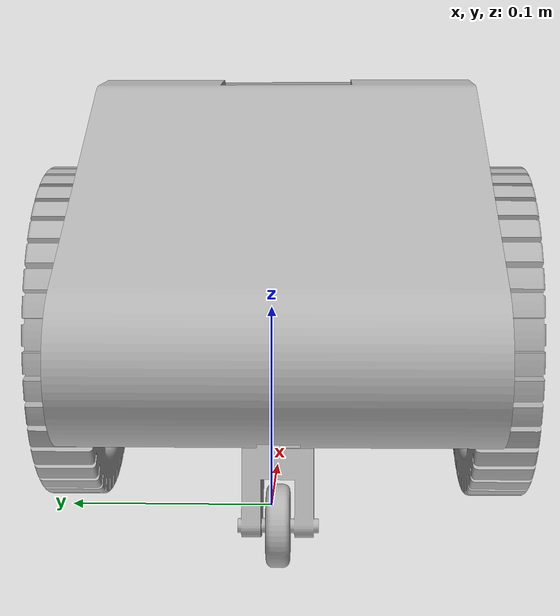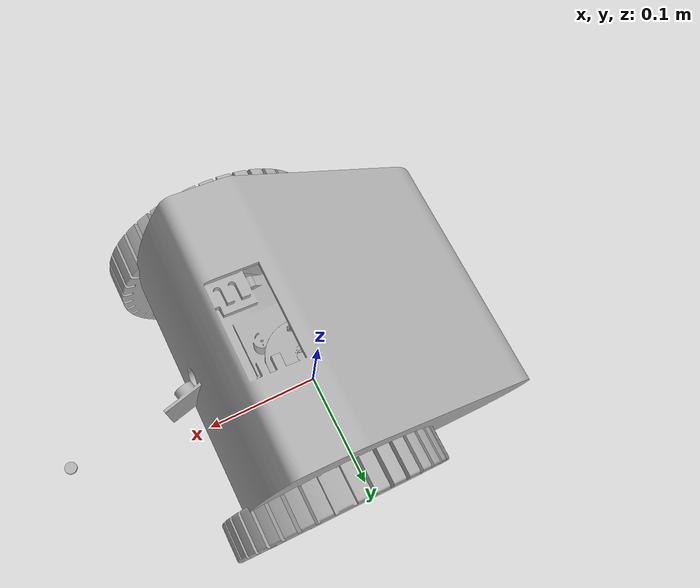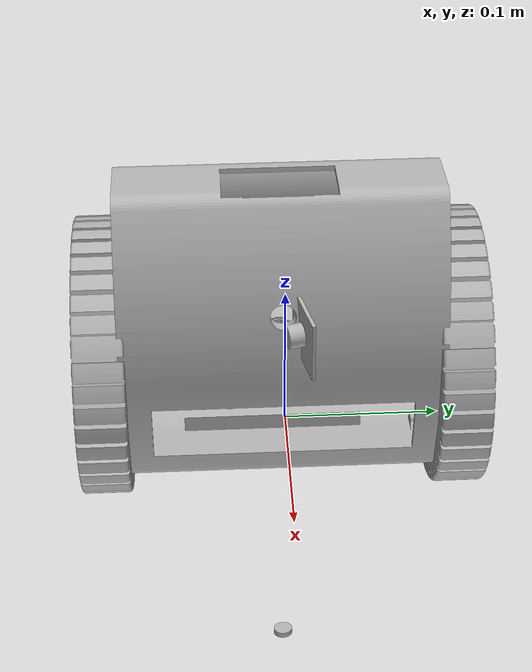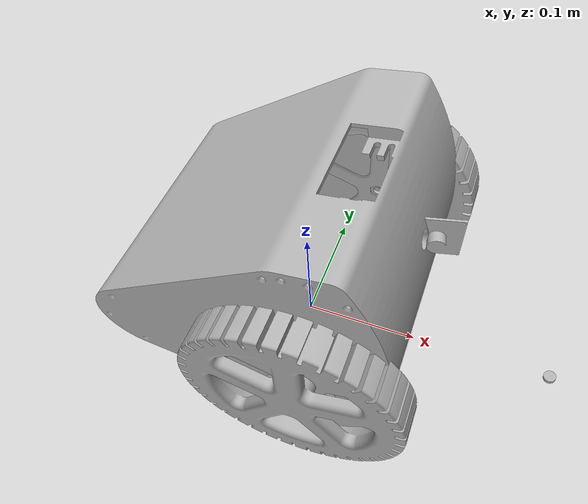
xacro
<?xml version="1.0" ?>
<robot name="test11" xmlns:xacro="http://www.ros.org/wiki/xacro">

<xacro:include filename="$(find test11_description)/urdf/materials.xacro" />
<xacro:include filename="$(find test11_description)/urdf/test11.trans" />
<xacro:include filename="$(find test11_description)/urdf/test11.gazebo" />
<link name="base_link">
  <inertial>
    <origin xyz="0.14595696730287228 -0.0069782300277070365 0.09831870104649193" rpy="0 0 0"/>
    <mass value="5.518968459018653"/>
    <inertia ixx="0.04418" iyy="0.047195" izz="0.050954" ixy="4.8e-05" iyz="-0.000134" ixz="-0.004789"/>
  </inertial>
  <visual>
    <origin xyz="0 0 0" rpy="0 0 0"/>
    <geometry>
      <mesh filename="package://test11_description/meshes/base_link.stl" scale="0.001 0.001 0.001"/>
    </geometry>
    <material name="silver"/>
  </visual>
  <collision>
    <origin xyz="0 0 0" rpy="0 0 0"/>
    <geometry>
      <mesh filename="package://test11_description/meshes/base_link.stl" scale="0.001 0.001 0.001"/>
    </geometry>
  </collision>
</link>

<link name="right_wheel">
  <inertial>
    <origin xyz="-4.15727808011912e-08 -0.011017473898217722 4.116808957482787e-07" rpy="0 0 0"/>
    <mass value="2.9595069273045143"/>
    <inertia ixx="0.006631" iyy="0.012759" izz="0.006631" ixy="0.0" iyz="0.0" ixz="0.0"/>
  </inertial>
  <visual>
    <origin xyz="-0.184181 0.102076 -0.084751" rpy="0 0 0"/>
    <geometry>
      <mesh filename="package://test11_description/meshes/right_wheel_1.stl" scale="0.001 0.001 0.001"/>
    </geometry>
    <material name="silver"/>
  </visual>
  <collision>
    <origin xyz="-0.184181 0.102076 -0.084751" rpy="0 0 0"/>
    <geometry>
      <mesh filename="package://test11_description/meshes/right_wheel_1.stl" scale="0.001 0.001 0.001"/>
    </geometry>
  </collision>
</link>

<link name="left_wheel">
  <inertial>
    <origin xyz="-4.157311728203439e-08 0.011018083823621738 4.1168070347152863e-07" rpy="0 0 0"/>
    <mass value="2.959506927354149"/>
    <inertia ixx="0.006631" iyy="0.012759" izz="0.006631" ixy="-0.0" iyz="-0.0" ixz="0.0"/>
  </inertial>
  <visual>
    <origin xyz="-0.184181 -0.088924 -0.084751" rpy="0 0 0"/>
    <geometry>
      <mesh filename="package://test11_description/meshes/left_wheel_1.stl" scale="0.001 0.001 0.001"/>
    </geometry>
    <material name="silver"/>
  </visual>
  <collision>
    <origin xyz="-0.184181 -0.088924 -0.084751" rpy="0 0 0"/>
    <geometry>
      <mesh filename="package://test11_description/meshes/left_wheel_1.stl" scale="0.001 0.001 0.001"/>
    </geometry>
  </collision>
</link>

<link name="camera_link">
  <inertial>
    <origin xyz="-0.00961500633557899 -1.0970586762226384e-05 0.004911649302484139" rpy="0 0 0"/>
    <mass value="0.033600494879184276"/>
    <inertia ixx="6e-06" iyy="3e-06" izz="3e-06" ixy="0.0" iyz="-0.0" ixz="1e-06"/>
  </inertial>
  <visual>
    <origin xyz="-0.245001 0.006564 -0.145532" rpy="0 0 0"/>
    <geometry>
      <mesh filename="package://test11_description/meshes/camera_link_1.stl" scale="0.001 0.001 0.001"/>
    </geometry>
    <material name="silver"/>
  </visual>
  <collision>
    <origin xyz="-0.245001 0.006564 -0.145532" rpy="0 0 0"/>
    <geometry>
      <mesh filename="package://test11_description/meshes/camera_link_1.stl" scale="0.001 0.001 0.001"/>
    </geometry>
  </collision>
</link>

<link name="laser_link">
  <inertial>
    <origin xyz="0.00454065771143683 -0.01939682662834952 0.005694455210610745" rpy="0 0 0"/>
    <mass value="0.1616483023051331"/>
    <inertia ixx="0.000129" iyy="5.6e-05" izz="0.000143" ixy="1e-06" iyz="-2.6e-05" ixz="0.0"/>
  </inertial>
  <visual>
    <origin xyz="-0.162817 -0.0 -0.060341" rpy="0 0 0"/>
    <geometry>
      <mesh filename="package://test11_description/meshes/lidar_link_1.stl" scale="0.001 0.001 0.001"/>
    </geometry>
    <material name="silver"/>
  </visual>
  <collision>
    <origin xyz="-0.162817 -0.0 -0.060341" rpy="0 0 0"/>
    <geometry>
      <mesh filename="package://test11_description/meshes/lidar_link_1.stl" scale="0.001 0.001 0.001"/>
    </geometry>
  </collision>
</link>

<link name="base_footprint">
  <!-- 注释掉inertial参数，因为KDL不支持根链接有惯性参数 -->
  <visual>
    <origin xyz="0 0 0" rpy="0 0 0"/>
    <geometry>
      <mesh filename="package://test11_description/meshes/base_footprint_1.stl" scale="0.001 0.001 0.001"/>
    </geometry>
    <material name="silver"/>
  </visual>
  <collision>
    <origin xyz="0 0 0" rpy="0 0 0"/>
    <geometry>
      <mesh filename="package://test11_description/meshes/base_footprint_1.stl" scale="0.001 0.001 0.001"/>
    </geometry>
  </collision>
</link>

<joint name="j1" type="fixed">
  <origin xyz="0.184181 -0.102076 0.084751" rpy="0 0 0"/>
  <parent link="base_link"/>
  <child link="right_wheel"/>
  <axis xyz="-0.0 1.0 0.0"/>
</joint>

<joint name="j2" type="fixed">
  <origin xyz="0.184181 0.088924 0.084751" rpy="0 0 0"/>
  <parent link="base_link"/>
  <child link="left_wheel"/>
  <axis xyz="0.0 1.0 0.0"/>
</joint>

<joint name="j3" type="fixed">
  <origin xyz="0.245001 -0.006564 0.145532" rpy="-1.5708 0 -1.5708"/>
  <parent link="base_link"/>
  <child link="camera_link"/>
</joint>

<joint name="j4" type="fixed">
  <origin xyz="0.162817 0.0 0.060341" rpy="0 0 -1.5708"/>
  <parent link="base_link"/>
  <child link="laser_link"/>
</joint>

<joint name="j6" type="fixed">
  <origin xyz="-0.15 0 0" rpy="0 0 0"/>
  <parent link="base_footprint"/>
  <child link="base_link"/>
</joint>

</robot>

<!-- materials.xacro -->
<robot name="test11" xmlns:xacro="http://www.ros.org/wiki/xacro" >

<material name="silver">
  <color rgba="0.700 0.700 0.700 1.000"/>
</material>

</robot>

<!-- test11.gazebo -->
<robot name="test11" xmlns:xacro="http://www.ros.org/wiki/xacro" >

<xacro:property name="body_color" value="Gazebo/Silver" />

<gazebo>
  <plugin name="control" filename="libgazebo_ros_control.so"/>
</gazebo>
<gazebo reference="base_link">
  <material>${body_color}</material>
  <mu1>0.2</mu1>
  <mu2>0.2</mu2>
  <selfCollide>true</selfCollide>
  <gravity>true</gravity>
</gazebo>

<gazebo reference="right_wheel_1">
  <material>${body_color}</material>
  <mu1>0.2</mu1>
  <mu2>0.2</mu2>
  <selfCollide>true</selfCollide>
</gazebo>

<gazebo reference="left_wheel_1">
  <material>${body_color}</material>
  <mu1>0.2</mu1>
  <mu2>0.2</mu2>
  <selfCollide>true</selfCollide>
</gazebo>

<gazebo reference="camera_link_1">
  <material>${body_color}</material>
  <mu1>0.2</mu1>
  <mu2>0.2</mu2>
  <selfCollide>true</selfCollide>
</gazebo>

<gazebo reference="lidar_link_1">
  <material>${body_color}</material>
  <mu1>0.2</mu1>
  <mu2>0.2</mu2>
  <selfCollide>true</selfCollide>
</gazebo>

<gazebo reference="base_footprint_1">
  <material>${body_color}</material>
  <mu1>0.2</mu1>
  <mu2>0.2</mu2>
  <selfCollide>true</selfCollide>
</gazebo>

</robot>
